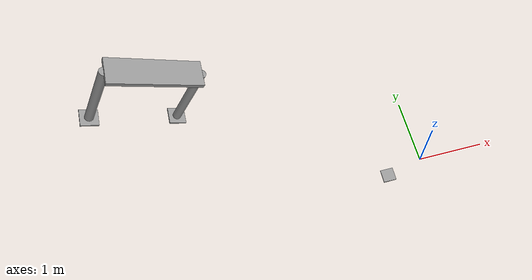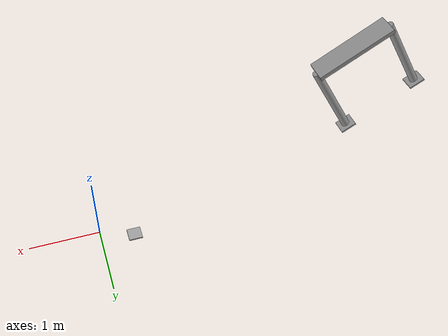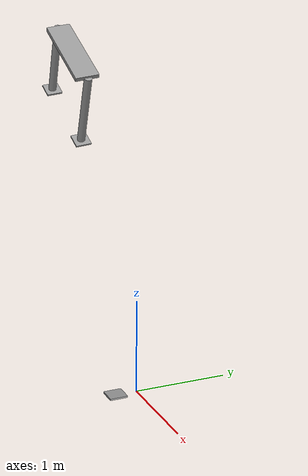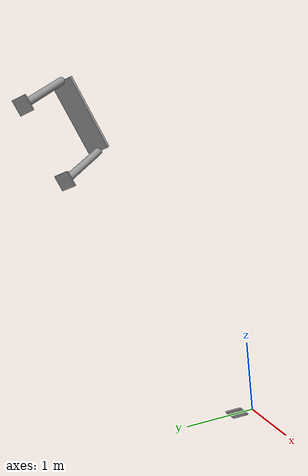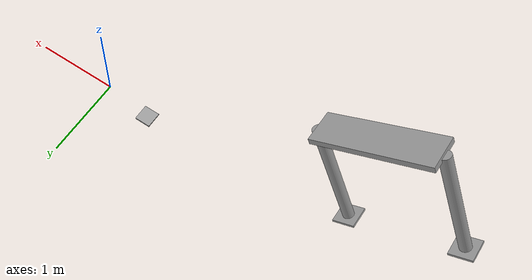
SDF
<?xml version='1.0'?>
<sdf version='1.7'>
  <model name='humanoid_one'>
    <link name='link_2'>
      <inertial>
        <mass>1</mass>
        <inertia>
          <ixx>0.166667</ixx>
          <ixy>0</ixy>
          <ixz>0</ixz>
          <iyy>0.166667</iyy>
          <iyz>0</iyz>
          <izz>0.166667</izz>
        </inertia>
        <pose>0 0 0 0 -0 0</pose>
      </inertial>
      <pose>-0.50053 -0.02944 -0.2546 0 -0 0</pose>
      <gravity>1</gravity>
      <self_collide>0</self_collide>
      <kinematic>0</kinematic>
      <enable_wind>0</enable_wind>
      <visual name='visual'>
        <pose>0 0 0 0 -0 0</pose>
        <geometry>
          <box>
            <size>0.2 0.2 0.02</size>
          </box>
        </geometry>
        <material>
          <lighting>1</lighting>
          <script>
            <uri>file://media/materials/scripts/gazebo.material</uri>
            <name>Gazebo/Grey</name>
          </script>
          <shader type='pixel'>
            <normal_map>__default__</normal_map>
          </shader>
          <ambient>0.3 0.3 0.3 1</ambient>
          <diffuse>0.7 0.7 0.7 1</diffuse>
          <specular>0.01 0.01 0.01 1</specular>
          <emissive>0 0 0 1</emissive>
        </material>
        <transparency>0</transparency>
        <cast_shadows>1</cast_shadows>
      </visual>
      <collision name='collision'>
        <laser_retro>0</laser_retro>
        <max_contacts>10</max_contacts>
        <pose>0 0 0 0 -0 0</pose>
        <geometry>
          <box>
            <size>0.2 0.2 0.02</size>
          </box>
        </geometry>
        <surface>
          <friction>
            <ode>
              <mu>1</mu>
              <mu2>1</mu2>
              <fdir1>0 0 0</fdir1>
              <slip1>0</slip1>
              <slip2>0</slip2>
            </ode>
            <torsional>
              <coefficient>1</coefficient>
              <patch_radius>0</patch_radius>
              <surface_radius>0</surface_radius>
              <use_patch_radius>1</use_patch_radius>
              <ode>
                <slip>0</slip>
              </ode>
            </torsional>
          </friction>
          <bounce>
            <restitution_coefficient>0</restitution_coefficient>
            <threshold>1e+06</threshold>
          </bounce>
          <contact>
            <collide_without_contact>0</collide_without_contact>
            <collide_without_contact_bitmask>1</collide_without_contact_bitmask>
            <collide_bitmask>1</collide_bitmask>
            <ode>
              <soft_cfm>0</soft_cfm>
              <soft_erp>0.2</soft_erp>
              <kp>1e+13</kp>
              <kd>1</kd>
              <max_vel>0.01</max_vel>
              <min_depth>0</min_depth>
            </ode>
            <bullet>
              <split_impulse>1</split_impulse>
              <split_impulse_penetration_threshold>-0.01</split_impulse_penetration_threshold>
              <soft_cfm>0</soft_cfm>
              <soft_erp>0.2</soft_erp>
              <kp>1e+13</kp>
              <kd>1</kd>
            </bullet>
          </contact>
        </surface>
      </collision>
    </link>
    <model name='Untitled'>
      <link name='link_0'>
        <inertial>
          <mass>1</mass>
          <inertia>
            <ixx>0.166667</ixx>
            <ixy>0</ixy>
            <ixz>0</ixz>
            <iyy>0.166667</iyy>
            <iyz>0</iyz>
            <izz>0.166667</izz>
          </inertia>
          <pose>0 0 0 0 -0 0</pose>
        </inertial>
        <pose>-0.00053 -0.02944 -0.2546 0 -0 0</pose>
        <gravity>1</gravity>
        <self_collide>0</self_collide>
        <kinematic>0</kinematic>
        <enable_wind>0</enable_wind>
        <visual name='visual'>
          <pose>0 0 1 0 -0 0</pose>
          <geometry>
            <box>
              <size>1 0.3 0.05</size>
            </box>
          </geometry>
          <material>
            <lighting>1</lighting>
            <script>
              <uri>file://media/materials/scripts/gazebo.material</uri>
              <name>Gazebo/Grey</name>
            </script>
            <shader type='pixel'>
              <normal_map>__default__</normal_map>
            </shader>
            <ambient>0.3 0.3 0.3 1</ambient>
            <diffuse>0.7 0.7 0.7 1</diffuse>
            <specular>0.01 0.01 0.01 1</specular>
            <emissive>0 0 0 1</emissive>
          </material>
          <transparency>0</transparency>
          <cast_shadows>1</cast_shadows>
        </visual>
        <collision name='collision'>
          <laser_retro>0</laser_retro>
          <max_contacts>10</max_contacts>
          <pose>0 0 1 0 -0 0</pose>
          <geometry>
            <box>
              <size>1 0.3 0.05</size>
            </box>
          </geometry>
          <surface>
            <friction>
              <ode>
                <mu>1</mu>
                <mu2>1</mu2>
                <fdir1>0 0 0</fdir1>
                <slip1>0</slip1>
                <slip2>0</slip2>
              </ode>
              <torsional>
                <coefficient>1</coefficient>
                <patch_radius>0</patch_radius>
                <surface_radius>0</surface_radius>
                <use_patch_radius>1</use_patch_radius>
                <ode>
                  <slip>0</slip>
                </ode>
              </torsional>
            </friction>
            <bounce>
              <restitution_coefficient>0</restitution_coefficient>
              <threshold>1e+06</threshold>
            </bounce>
            <contact>
              <collide_without_contact>0</collide_without_contact>
              <collide_without_contact_bitmask>1</collide_without_contact_bitmask>
              <collide_bitmask>1</collide_bitmask>
              <ode>
                <soft_cfm>0</soft_cfm>
                <soft_erp>0.2</soft_erp>
                <kp>1e+13</kp>
                <kd>1</kd>
                <max_vel>0.01</max_vel>
                <min_depth>0</min_depth>
              </ode>
              <bullet>
                <split_impulse>1</split_impulse>
                <split_impulse_penetration_threshold>-0.01</split_impulse_penetration_threshold>
                <soft_cfm>0</soft_cfm>
                <soft_erp>0.2</soft_erp>
                <kp>1e+13</kp>
                <kd>1</kd>
              </bullet>
            </contact>
          </surface>
        </collision>
      </link>
      <link name='link_1'>
        <inertial>
          <mass>1</mass>
          <inertia>
            <ixx>0.145833</ixx>
            <ixy>0</ixy>
            <ixz>0</ixz>
            <iyy>0.145833</iyy>
            <iyz>0</iyz>
            <izz>0.125</izz>
          </inertia>
          <pose>0 0 0 0 -0 0</pose>
        </inertial>
        <pose>0.49947 -0.01944 0.2454 0 -0 0</pose>
        <gravity>1</gravity>
        <self_collide>0</self_collide>
        <kinematic>0</kinematic>
        <enable_wind>0</enable_wind>
        <visual name='visual'>
          <pose>0 0 0 0 -0 0</pose>
          <geometry>
            <cylinder>
              <radius>0.05</radius>
              <length>1</length>
            </cylinder>
          </geometry>
          <material>
            <lighting>1</lighting>
            <script>
              <uri>file://media/materials/scripts/gazebo.material</uri>
              <name>Gazebo/Grey</name>
            </script>
            <shader type='pixel'>
              <normal_map>__default__</normal_map>
            </shader>
            <ambient>0.3 0.3 0.3 1</ambient>
            <diffuse>0.7 0.7 0.7 1</diffuse>
            <specular>0.01 0.01 0.01 1</specular>
            <emissive>0 0 0 1</emissive>
          </material>
          <transparency>0</transparency>
          <cast_shadows>1</cast_shadows>
        </visual>
        <collision name='collision'>
          <laser_retro>0</laser_retro>
          <max_contacts>10</max_contacts>
          <pose>0 0 0 0 -0 0</pose>
          <geometry>
            <cylinder>
              <radius>0.05</radius>
              <length>1</length>
            </cylinder>
          </geometry>
          <surface>
            <friction>
              <ode>
                <mu>1</mu>
                <mu2>1</mu2>
                <fdir1>0 0 0</fdir1>
                <slip1>0</slip1>
                <slip2>0</slip2>
              </ode>
              <torsional>
                <coefficient>1</coefficient>
                <patch_radius>0</patch_radius>
                <surface_radius>0</surface_radius>
                <use_patch_radius>1</use_patch_radius>
                <ode>
                  <slip>0</slip>
                </ode>
              </torsional>
            </friction>
            <bounce>
              <restitution_coefficient>0</restitution_coefficient>
              <threshold>1e+06</threshold>
            </bounce>
            <contact>
              <collide_without_contact>0</collide_without_contact>
              <collide_without_contact_bitmask>1</collide_without_contact_bitmask>
              <collide_bitmask>1</collide_bitmask>
              <ode>
                <soft_cfm>0</soft_cfm>
                <soft_erp>0.2</soft_erp>
                <kp>1e+13</kp>
                <kd>1</kd>
                <max_vel>0.01</max_vel>
                <min_depth>0</min_depth>
              </ode>
              <bullet>
                <split_impulse>1</split_impulse>
                <split_impulse_penetration_threshold>-0.01</split_impulse_penetration_threshold>
                <soft_cfm>0</soft_cfm>
                <soft_erp>0.2</soft_erp>
                <kp>1e+13</kp>
                <kd>1</kd>
              </bullet>
            </contact>
          </surface>
        </collision>
      </link>
      <link name='link_1_clone'>
        <inertial>
          <mass>1</mass>
          <inertia>
            <ixx>0.145833</ixx>
            <ixy>0</ixy>
            <ixz>0</ixz>
            <iyy>0.145833</iyy>
            <iyz>0</iyz>
            <izz>0.125</izz>
          </inertia>
          <pose>0 0 0 0 -0 0</pose>
        </inertial>
        <pose>-0.50053 -0.02944 0.2454 0 -0 0</pose>
        <gravity>1</gravity>
        <self_collide>0</self_collide>
        <kinematic>0</kinematic>
        <enable_wind>0</enable_wind>
        <visual name='visual'>
          <pose>0 0 0 0 -0 0</pose>
          <geometry>
            <cylinder>
              <radius>0.05</radius>
              <length>1</length>
            </cylinder>
          </geometry>
          <material>
            <lighting>1</lighting>
            <script>
              <uri>file://media/materials/scripts/gazebo.material</uri>
              <name>Gazebo/Grey</name>
            </script>
            <shader type='pixel'>
              <normal_map>__default__</normal_map>
            </shader>
            <ambient>0.3 0.3 0.3 1</ambient>
            <diffuse>0.7 0.7 0.7 1</diffuse>
            <specular>0.01 0.01 0.01 1</specular>
            <emissive>0 0 0 1</emissive>
          </material>
          <transparency>0</transparency>
          <cast_shadows>1</cast_shadows>
        </visual>
        <collision name='collision'>
          <laser_retro>0</laser_retro>
          <max_contacts>10</max_contacts>
          <pose>0 0 0 0 -0 0</pose>
          <geometry>
            <cylinder>
              <radius>0.05</radius>
              <length>1</length>
            </cylinder>
          </geometry>
          <surface>
            <friction>
              <ode>
                <mu>1</mu>
                <mu2>1</mu2>
                <fdir1>0 0 0</fdir1>
                <slip1>0</slip1>
                <slip2>0</slip2>
              </ode>
              <torsional>
                <coefficient>1</coefficient>
                <patch_radius>0</patch_radius>
                <surface_radius>0</surface_radius>
                <use_patch_radius>1</use_patch_radius>
                <ode>
                  <slip>0</slip>
                </ode>
              </torsional>
            </friction>
            <bounce>
              <restitution_coefficient>0</restitution_coefficient>
              <threshold>1e+06</threshold>
            </bounce>
            <contact>
              <collide_without_contact>0</collide_without_contact>
              <collide_without_contact_bitmask>1</collide_without_contact_bitmask>
              <collide_bitmask>1</collide_bitmask>
              <ode>
                <soft_cfm>0</soft_cfm>
                <soft_erp>0.2</soft_erp>
                <kp>1e+13</kp>
                <kd>1</kd>
                <max_vel>0.01</max_vel>
                <min_depth>0</min_depth>
              </ode>
              <bullet>
                <split_impulse>1</split_impulse>
                <split_impulse_penetration_threshold>-0.01</split_impulse_penetration_threshold>
                <soft_cfm>0</soft_cfm>
                <soft_erp>0.2</soft_erp>
                <kp>1e+13</kp>
                <kd>1</kd>
              </bullet>
            </contact>
          </surface>
        </collision>
      </link>
      <link name='link_2'>
        <inertial>
          <mass>1</mass>
          <inertia>
            <ixx>0.166667</ixx>
            <ixy>0</ixy>
            <ixz>0</ixz>
            <iyy>0.166667</iyy>
            <iyz>0</iyz>
            <izz>0.166667</izz>
          </inertia>
          <pose>0 0 0 0 -0 0</pose>
        </inertial>
        <pose>-0.50053 -0.02944 -0.2546 0 -0 0</pose>
        <gravity>1</gravity>
        <self_collide>0</self_collide>
        <kinematic>0</kinematic>
        <enable_wind>0</enable_wind>
        <visual name='visual'>
          <pose>0 0 0 0 -0 0</pose>
          <geometry>
            <box>
              <size>0.2 0.2 0.02</size>
            </box>
          </geometry>
          <material>
            <lighting>1</lighting>
            <script>
              <uri>file://media/materials/scripts/gazebo.material</uri>
              <name>Gazebo/Grey</name>
            </script>
            <shader type='pixel'>
              <normal_map>__default__</normal_map>
            </shader>
            <ambient>0.3 0.3 0.3 1</ambient>
            <diffuse>0.7 0.7 0.7 1</diffuse>
            <specular>0.01 0.01 0.01 1</specular>
            <emissive>0 0 0 1</emissive>
          </material>
          <transparency>0</transparency>
          <cast_shadows>1</cast_shadows>
        </visual>
        <collision name='collision'>
          <laser_retro>0</laser_retro>
          <max_contacts>10</max_contacts>
          <pose>0 0 0 0 -0 0</pose>
          <geometry>
            <box>
              <size>0.2 0.2 0.02</size>
            </box>
          </geometry>
          <surface>
            <friction>
              <ode>
                <mu>1</mu>
                <mu2>1</mu2>
                <fdir1>0 0 0</fdir1>
                <slip1>0</slip1>
                <slip2>0</slip2>
              </ode>
              <torsional>
                <coefficient>1</coefficient>
                <patch_radius>0</patch_radius>
                <surface_radius>0</surface_radius>
                <use_patch_radius>1</use_patch_radius>
                <ode>
                  <slip>0</slip>
                </ode>
              </torsional>
            </friction>
            <bounce>
              <restitution_coefficient>0</restitution_coefficient>
              <threshold>1e+06</threshold>
            </bounce>
            <contact>
              <collide_without_contact>0</collide_without_contact>
              <collide_without_contact_bitmask>1</collide_without_contact_bitmask>
              <collide_bitmask>1</collide_bitmask>
              <ode>
                <soft_cfm>0</soft_cfm>
                <soft_erp>0.2</soft_erp>
                <kp>1e+13</kp>
                <kd>1</kd>
                <max_vel>0.01</max_vel>
                <min_depth>0</min_depth>
              </ode>
              <bullet>
                <split_impulse>1</split_impulse>
                <split_impulse_penetration_threshold>-0.01</split_impulse_penetration_threshold>
                <soft_cfm>0</soft_cfm>
                <soft_erp>0.2</soft_erp>
                <kp>1e+13</kp>
                <kd>1</kd>
              </bullet>
            </contact>
          </surface>
        </collision>
      </link>
      <link name='link_2_clone'>
        <inertial>
          <mass>1</mass>
          <inertia>
            <ixx>0.166667</ixx>
            <ixy>0</ixy>
            <ixz>0</ixz>
            <iyy>0.166667</iyy>
            <iyz>0</iyz>
            <izz>0.166667</izz>
          </inertia>
          <pose>0 0 0 0 -0 0</pose>
        </inertial>
        <pose>0.49947 -0.01944 -0.2546 0 -0 0</pose>
        <gravity>1</gravity>
        <self_collide>0</self_collide>
        <kinematic>0</kinematic>
        <enable_wind>0</enable_wind>
        <visual name='visual'>
          <pose>0 0 0 0 -0 0</pose>
          <geometry>
            <box>
              <size>0.2 0.2 0.02</size>
            </box>
          </geometry>
          <material>
            <lighting>1</lighting>
            <script>
              <uri>file://media/materials/scripts/gazebo.material</uri>
              <name>Gazebo/Grey</name>
            </script>
            <shader type='pixel'>
              <normal_map>__default__</normal_map>
            </shader>
            <ambient>0.3 0.3 0.3 1</ambient>
            <diffuse>0.7 0.7 0.7 1</diffuse>
            <specular>0.01 0.01 0.01 1</specular>
            <emissive>0 0 0 1</emissive>
          </material>
          <transparency>0</transparency>
          <cast_shadows>1</cast_shadows>
        </visual>
        <collision name='collision'>
          <laser_retro>0</laser_retro>
          <max_contacts>10</max_contacts>
          <pose>0 0 0 0 -0 0</pose>
          <geometry>
            <box>
              <size>0.2 0.2 0.02</size>
            </box>
          </geometry>
          <surface>
            <friction>
              <ode>
                <mu>1</mu>
                <mu2>1</mu2>
                <fdir1>0 0 0</fdir1>
                <slip1>0</slip1>
                <slip2>0</slip2>
              </ode>
              <torsional>
                <coefficient>1</coefficient>
                <patch_radius>0</patch_radius>
                <surface_radius>0</surface_radius>
                <use_patch_radius>1</use_patch_radius>
                <ode>
                  <slip>0</slip>
                </ode>
              </torsional>
            </friction>
            <bounce>
              <restitution_coefficient>0</restitution_coefficient>
              <threshold>1e+06</threshold>
            </bounce>
            <contact>
              <collide_without_contact>0</collide_without_contact>
              <collide_without_contact_bitmask>1</collide_without_contact_bitmask>
              <collide_bitmask>1</collide_bitmask>
              <ode>
                <soft_cfm>0</soft_cfm>
                <soft_erp>0.2</soft_erp>
                <kp>1e+13</kp>
                <kd>1</kd>
                <max_vel>0.01</max_vel>
                <min_depth>0</min_depth>
              </ode>
              <bullet>
                <split_impulse>1</split_impulse>
                <split_impulse_penetration_threshold>-0.01</split_impulse_penetration_threshold>
                <soft_cfm>0</soft_cfm>
                <soft_erp>0.2</soft_erp>
                <kp>1e+13</kp>
                <kd>1</kd>
              </bullet>
            </contact>
          </surface>
        </collision>
      </link>
      <joint name='link_0_JOINT_1' type='ball'>
        <parent>link_0</parent>
        <child>link_1</child>
        <pose>0 0 0 0 -0 0</pose>
        <physics>
          <ode>
            <limit>
              <cfm>0</cfm>
              <erp>0.2</erp>
            </limit>
            <suspension>
              <cfm>0</cfm>
              <erp>0.2</erp>
            </suspension>
          </ode>
        </physics>
      </joint>
      <joint name='link_0_JOINT_2' type='ball'>
        <parent>link_0</parent>
        <child>link_1_clone</child>
        <pose>0 0 0 0 -0 0</pose>
        <physics>
          <ode>
            <limit>
              <cfm>0</cfm>
              <erp>0.2</erp>
            </limit>
            <suspension>
              <cfm>0</cfm>
              <erp>0.2</erp>
            </suspension>
          </ode>
        </physics>
      </joint>
      <joint name='link_1_JOINT_7' type='universal'>
        <parent>link_1</parent>
        <child>link_2_clone</child>
        <pose>0 0 0 0 -0 0</pose>
        <axis>
          <xyz>1 0 0</xyz>
          <limit>
            <lower>-1.79769e+308</lower>
            <upper>1.79769e+308</upper>
            <effort>-1</effort>
            <velocity>-1</velocity>
          </limit>
          <dynamics>
            <spring_reference>0</spring_reference>
            <spring_stiffness>0</spring_stiffness>
            <damping>0</damping>
          </dynamics>
        </axis>
        <axis2>
          <xyz>0 1 0</xyz>
          <limit>
            <lower>-1.79769e+308</lower>
            <upper>1.79769e+308</upper>
            <effort>-1</effort>
            <velocity>-1</velocity>
          </limit>
          <dynamics>
            <spring_reference>0</spring_reference>
            <spring_stiffness>0</spring_stiffness>
            <damping>0</damping>
          </dynamics>
        </axis2>
        <physics>
          <ode>
            <limit>
              <cfm>0</cfm>
              <erp>0.2</erp>
            </limit>
            <suspension>
              <cfm>0</cfm>
              <erp>0.2</erp>
            </suspension>
          </ode>
        </physics>
      </joint>
      <joint name='link_1_JOINT_8' type='fixed'>
        <parent>link_1</parent>
        <child>link_2_clone</child>
        <pose>0 0 0 0 -0 0</pose>
        <physics>
          <ode>
            <limit>
              <cfm>0</cfm>
              <erp>0.2</erp>
            </limit>
            <suspension>
              <cfm>0</cfm>
              <erp>0.2</erp>
            </suspension>
          </ode>
        </physics>
      </joint>
      <joint name='link_1_clone_JOINT_6' type='universal'>
        <parent>link_1_clone</parent>
        <child>link_2</child>
        <pose>0 0 0 0 -0 0</pose>
        <axis>
          <xyz>1 0 0</xyz>
          <limit>
            <lower>-1.79769e+308</lower>
            <upper>1.79769e+308</upper>
            <effort>-1</effort>
            <velocity>-1</velocity>
          </limit>
          <dynamics>
            <spring_reference>0</spring_reference>
            <spring_stiffness>0</spring_stiffness>
            <damping>0</damping>
          </dynamics>
        </axis>
        <axis2>
          <xyz>0 1 0</xyz>
          <limit>
            <lower>-1.79769e+308</lower>
            <upper>1.79769e+308</upper>
            <effort>-1</effort>
            <velocity>-1</velocity>
          </limit>
          <dynamics>
            <spring_reference>0</spring_reference>
            <spring_stiffness>0</spring_stiffness>
            <damping>0</damping>
          </dynamics>
        </axis2>
        <physics>
          <ode>
            <limit>
              <cfm>0</cfm>
              <erp>0.2</erp>
            </limit>
            <suspension>
              <cfm>0</cfm>
              <erp>0.2</erp>
            </suspension>
          </ode>
        </physics>
      </joint>
      <joint name='link_1_clone_JOINT_9' type='universal'>
        <parent>link_1_clone</parent>
        <child>link_2</child>
        <pose>0 0 0 0 -0 0</pose>
        <axis>
          <xyz>1 0 0</xyz>
          <limit>
            <lower>-1.79769e+308</lower>
            <upper>1.79769e+308</upper>
            <effort>-1</effort>
            <velocity>-1</velocity>
          </limit>
          <dynamics>
            <spring_reference>0</spring_reference>
            <spring_stiffness>0</spring_stiffness>
            <damping>0</damping>
          </dynamics>
        </axis>
        <axis2>
          <xyz>0 1 0</xyz>
          <limit>
            <lower>-1.79769e+308</lower>
            <upper>1.79769e+308</upper>
            <effort>-1</effort>
            <velocity>-1</velocity>
          </limit>
          <dynamics>
            <spring_reference>0</spring_reference>
            <spring_stiffness>0</spring_stiffness>
            <damping>0</damping>
          </dynamics>
        </axis2>
        <physics>
          <ode>
            <limit>
              <cfm>0</cfm>
              <erp>0.2</erp>
            </limit>
            <suspension>
              <cfm>0</cfm>
              <erp>0.2</erp>
            </suspension>
          </ode>
        </physics>
      </joint>
      <static>0</static>
      <allow_auto_disable>1</allow_auto_disable>
      <pose>-3.57752 0.631666 2.30205 0.101379 0.491277 0.047953</pose>
    </model>
    <static>0</static>
    <allow_auto_disable>1</allow_auto_disable>
  </model>
</sdf>
